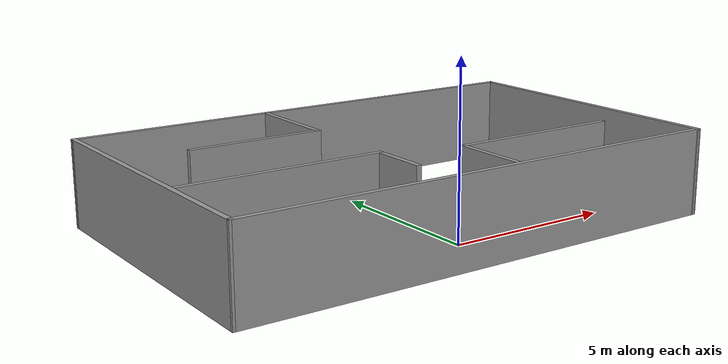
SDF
<?xml version='1.0'?>
<sdf version='1.7'>
  <model name='room'>
    <pose>-0.1498 2.76721 0 0 -0 0</pose>
    <link name='Wall_1'>
      <collision name='Wall_1_Collision'>
        <geometry>
          <box>
            <size>14.7248 0.15 2.5</size>
          </box>
        </geometry>
        <pose>0 0 1.25 0 -0 0</pose>
      </collision>
      <visual name='Wall_1_Visual'>
        <pose>0 0 1.25 0 -0 0</pose>
        <geometry>
          <box>
            <size>14.7248 0.15 2.5</size>
          </box>
        </geometry>
        <material>
          <script>
            <uri>file://media/materials/scripts/gazebo.material</uri>
            <name>Gazebo/Grey</name>
          </script>
          <ambient>1 1 1 1</ambient>
        </material>
        <meta>
          <layer>0</layer>
        </meta>
      </visual>
      <pose>-0.015138 -4.425 0 0 -0 -0.004198</pose>
    </link>
    <link name='Wall_10'>
      <collision name='Wall_10_Collision'>
        <geometry>
          <box>
            <size>6 0.15 2.5</size>
          </box>
        </geometry>
        <pose>0 0 1.25 0 -0 0</pose>
      </collision>
      <visual name='Wall_10_Visual'>
        <pose>0 0 1.25 0 -0 0</pose>
        <geometry>
          <box>
            <size>6 0.15 2.5</size>
          </box>
        </geometry>
        <material>
          <script>
            <uri>file://media/materials/scripts/gazebo.material</uri>
            <name>Gazebo/Grey</name>
          </script>
          <ambient>1 1 1 1</ambient>
        </material>
        <meta>
          <layer>0</layer>
        </meta>
      </visual>
      <pose>-4.37633 -1.49034 0 0 -0 0</pose>
    </link>
    <link name='Wall_12'>
      <collision name='Wall_12_Collision'>
        <geometry>
          <box>
            <size>1.75 0.15 2.5</size>
          </box>
        </geometry>
        <pose>0 0 1.25 0 -0 0</pose>
      </collision>
      <visual name='Wall_12_Visual'>
        <pose>0 0 1.25 0 -0 0</pose>
        <geometry>
          <box>
            <size>1.75 0.15 2.5</size>
          </box>
        </geometry>
        <material>
          <script>
            <uri>file://media/materials/scripts/gazebo.material</uri>
            <name>Gazebo/Grey</name>
          </script>
          <ambient>1 1 1 1</ambient>
        </material>
        <meta>
          <layer>0</layer>
        </meta>
      </visual>
      <pose>-1.45133 -2.29034 0 0 -0 -1.5708</pose>
    </link>
    <link name='Wall_14'>
      <collision name='Wall_14_Collision'>
        <geometry>
          <box>
            <size>3 0.15 2.5</size>
          </box>
        </geometry>
        <pose>0 0 1.25 0 -0 0</pose>
      </collision>
      <visual name='Wall_14_Visual'>
        <pose>0 0 1.25 0 -0 0</pose>
        <geometry>
          <box>
            <size>3 0.15 2.5</size>
          </box>
        </geometry>
        <material>
          <script>
            <uri>file://media/materials/scripts/gazebo.material</uri>
            <name>Gazebo/Grey</name>
          </script>
          <ambient>1 1 1 1</ambient>
        </material>
        <meta>
          <layer>0</layer>
        </meta>
      </visual>
      <pose>-1.42801 2.98857 0 0 -0 -1.5708</pose>
    </link>
    <link name='Wall_15'>
      <collision name='Wall_15_Collision'>
        <geometry>
          <box>
            <size>4 0.15 2.5</size>
          </box>
        </geometry>
        <pose>0 0 1.25 0 -0 0</pose>
      </collision>
      <visual name='Wall_15_Visual'>
        <pose>0 0 1.25 0 -0 0</pose>
        <geometry>
          <box>
            <size>4 0.15 2.5</size>
          </box>
        </geometry>
        <material>
          <script>
            <uri>file://media/materials/scripts/gazebo.material</uri>
            <name>Gazebo/Grey</name>
          </script>
          <ambient>1 1 1 1</ambient>
        </material>
        <meta>
          <layer>0</layer>
        </meta>
      </visual>
      <pose>-3.35301 1.56357 0 0 -0 3.14159</pose>
    </link>
    <link name='Wall_17'>
      <collision name='Wall_17_Collision'>
        <geometry>
          <box>
            <size>2.25 0.15 2.5</size>
          </box>
        </geometry>
        <pose>0 0 1.25 0 -0 0</pose>
      </collision>
      <visual name='Wall_17_Visual'>
        <pose>0 0 1.25 0 -0 0</pose>
        <geometry>
          <box>
            <size>2.25 0.15 2.5</size>
          </box>
        </geometry>
        <material>
          <script>
            <uri>file://media/materials/scripts/gazebo.material</uri>
            <name>Gazebo/Grey</name>
          </script>
          <ambient>1 1 1 1</ambient>
        </material>
        <meta>
          <layer>0</layer>
        </meta>
      </visual>
      <pose>0.743896 -3.25464 0 0 -0 1.5708</pose>
    </link>
    <link name='Wall_18'>
      <collision name='Wall_18_Collision'>
        <geometry>
          <box>
            <size>5.25 0.15 2.5</size>
          </box>
        </geometry>
        <pose>0 0 1.25 0 -0 0</pose>
      </collision>
      <visual name='Wall_18_Visual'>
        <pose>0 0 1.25 0 -0 0</pose>
        <geometry>
          <box>
            <size>5.25 0.15 2.5</size>
          </box>
        </geometry>
        <material>
          <script>
            <uri>file://media/materials/scripts/gazebo.material</uri>
            <name>Gazebo/Grey</name>
          </script>
          <ambient>1 1 1 1</ambient>
        </material>
        <meta>
          <layer>0</layer>
        </meta>
      </visual>
      <pose>3.2939 -2.20464 0 0 -0 0</pose>
    </link>
    <link name='Wall_6'>
      <collision name='Wall_6_Collision'>
        <geometry>
          <box>
            <size>9 0.15 2.5</size>
          </box>
        </geometry>
        <pose>0 0 1.25 0 -0 0</pose>
      </collision>
      <visual name='Wall_6_Visual'>
        <pose>0 0 1.25 0 -0 0</pose>
        <geometry>
          <box>
            <size>9 0.15 2.5</size>
          </box>
        </geometry>
        <material>
          <script>
            <uri>file://media/materials/scripts/gazebo.material</uri>
            <name>Gazebo/Grey</name>
          </script>
          <ambient>1 1 1 1</ambient>
        </material>
        <meta>
          <layer>0</layer>
        </meta>
      </visual>
      <pose>-7.30248 0.03059 0 0 -0 1.5708</pose>
    </link>
    <link name='Wall_7'>
      <collision name='Wall_7_Collision'>
        <geometry>
          <box>
            <size>14.7248 0.15 2.5</size>
          </box>
        </geometry>
        <pose>0 0 1.25 0 -0 0</pose>
      </collision>
      <visual name='Wall_7_Visual'>
        <pose>0 0 1.25 0 -0 0</pose>
        <geometry>
          <box>
            <size>14.7248 0.15 2.5</size>
          </box>
        </geometry>
        <material>
          <script>
            <uri>file://media/materials/scripts/gazebo.material</uri>
            <name>Gazebo/Grey</name>
          </script>
          <ambient>1 1 1 1</ambient>
        </material>
        <meta>
          <layer>0</layer>
        </meta>
      </visual>
      <pose>-0.015138 4.425 0 0 -0 -0.004198</pose>
    </link>
    <link name='Wall_8'>
      <collision name='Wall_8_Collision'>
        <geometry>
          <box>
            <size>9 0.15 2.5</size>
          </box>
        </geometry>
        <pose>0 0 1.25 0 -0 0</pose>
      </collision>
      <visual name='Wall_8_Visual'>
        <pose>0 0 1.25 0 -0 0</pose>
        <geometry>
          <box>
            <size>9 0.15 2.5</size>
          </box>
        </geometry>
        <material>
          <script>
            <uri>file://media/materials/scripts/gazebo.material</uri>
            <name>Gazebo/Grey</name>
          </script>
          <ambient>1 1 1 1</ambient>
        </material>
        <meta>
          <layer>0</layer>
        </meta>
      </visual>
      <pose>7.3028 -0.03059 0 0 -0 -1.5708</pose>
    </link>
    <static>1</static>
  </model>
</sdf>
